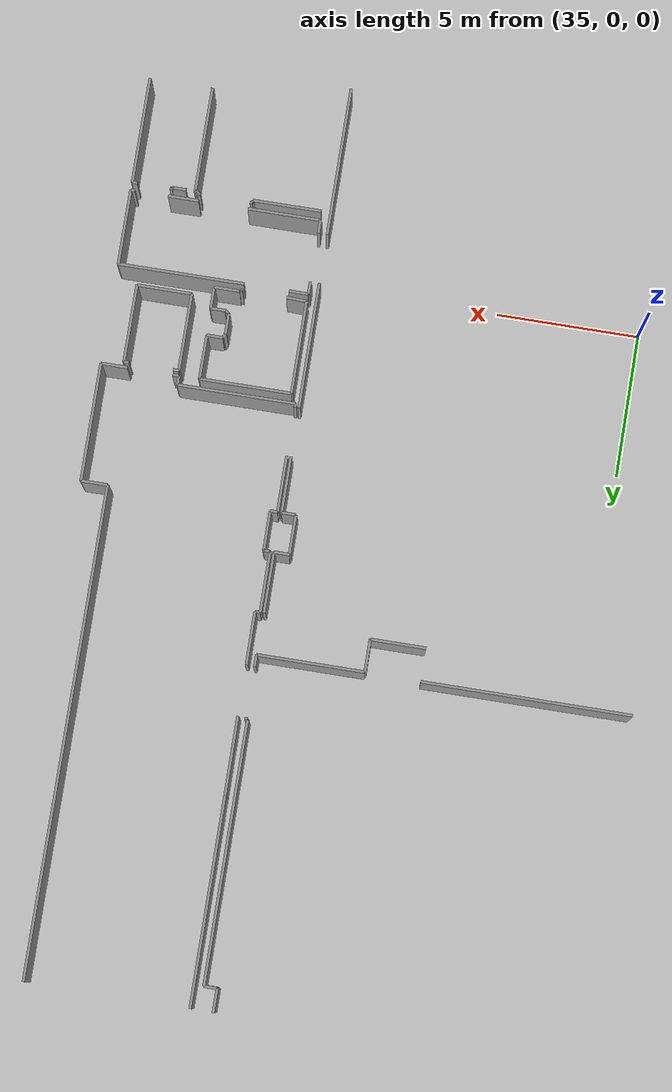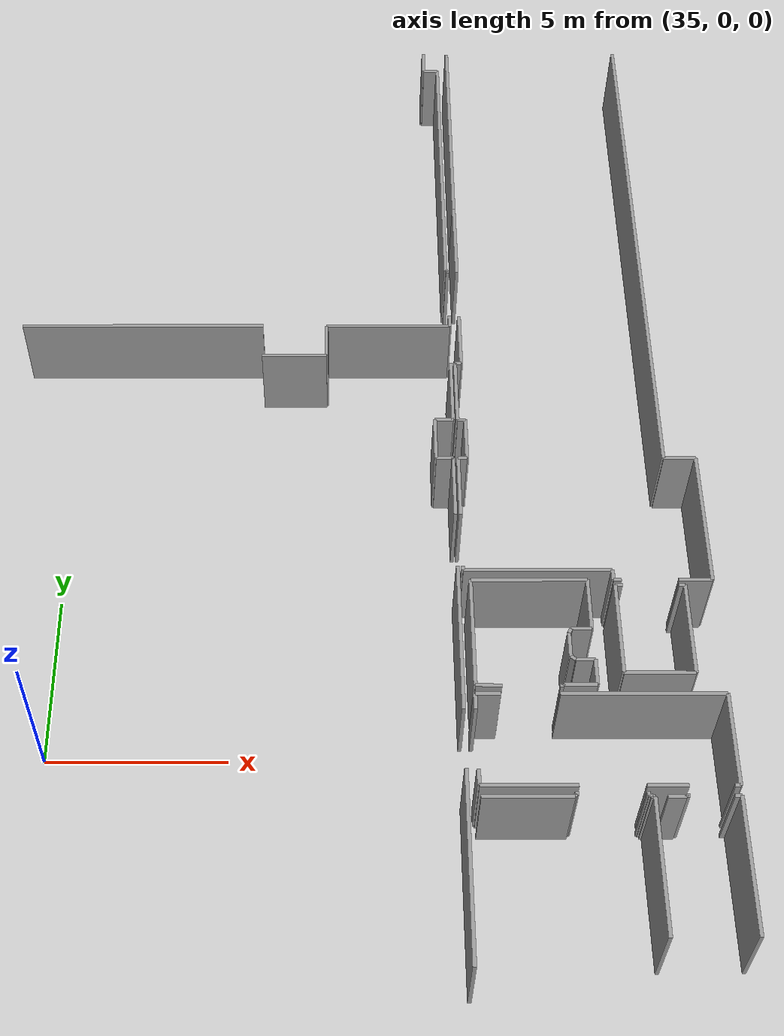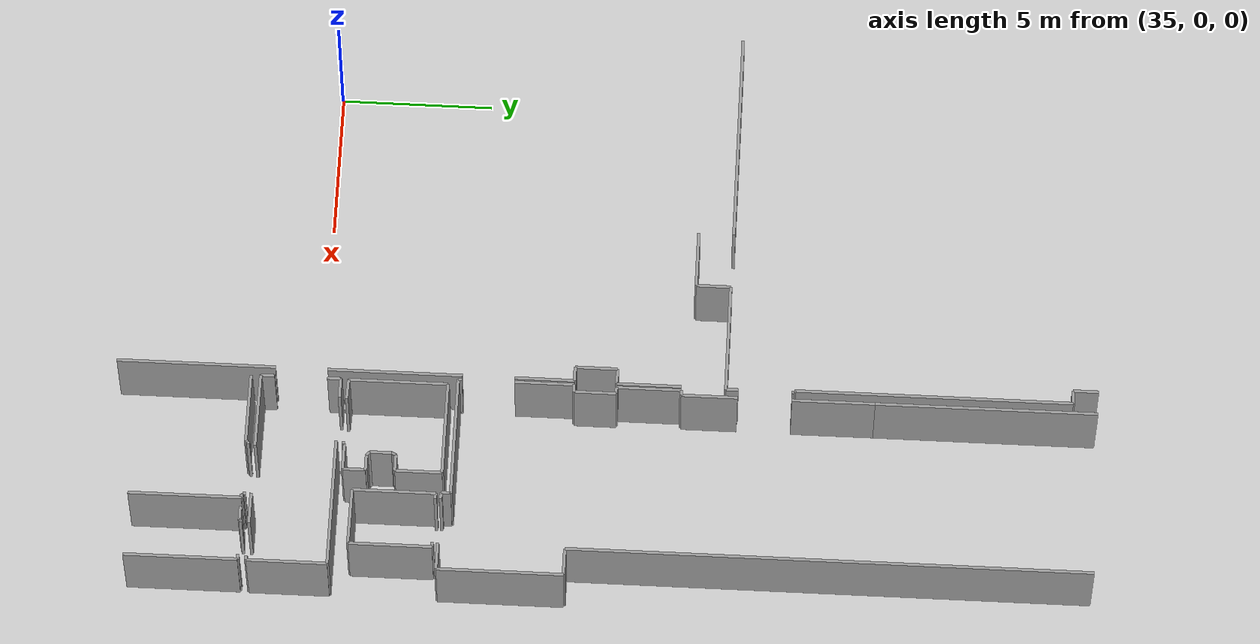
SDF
<sdf version="1.6">
 <world name="default">
  <model name="ground_plane">
   <static>1</static>
   <link name="link">
    <collision name="collision">
     <geometry><plane><normal>0 0 1</normal><size>100 100</size></plane></geometry>
     <surface><friction><ode><mu>100</mu><mu2>50</mu2></ode></friction></surface>
    </collision>
    <visual name="visual">
     <cast_shadows>0</cast_shadows>
     <geometry><plane><normal>0 0 1</normal><size>100 100</size></plane></geometry>
     <material>
      <script><uri>file://media/materials/scripts/gazebo.material</uri><name>Gazebo/Grey</name></script>
     </material>
    </visual>
   </link>
  </model>
  <model name="50045367">
   <static>1</static>
   <link name="Wall_161">
    <collision name="Wall_161_Collision">
     <geometry><box><size>0.830072666294 0.1 2.5</size></box></geometry>
     <pose>0.415036333147 0 1.25 0 0 0</pose>
    </collision>
    <visual name="Wall_161_Visual">
     <pose>0.415036333147 0 1.25 0 0 0</pose>
     <geometry><box><size>0.830072666294 0.1 2.5</size></box></geometry>
     <material>
      <script><uri>file://media/materials/scripts/gazebo.material</uri><name>Gazebo/Grey</name></script>
      <ambient>1 1 1 1</ambient>
     </material>
    </visual>
    <pose>99.0440317089 -0.00355709131562 0 0 0 -1.57079632679</pose>
   </link>
   <link name="Wall_162">
    <collision name="Wall_162_Collision">
     <geometry><box><size>0.457086234057 0.1 2.5</size></box></geometry>
     <pose>0.228543117028 0 1.25 0 0 0</pose>
    </collision>
    <visual name="Wall_162_Visual">
     <pose>0.228543117028 0 1.25 0 0 0</pose>
     <geometry><box><size>0.457086234057 0.1 2.5</size></box></geometry>
     <material>
      <script><uri>file://media/materials/scripts/gazebo.material</uri><name>Gazebo/Grey</name></script>
      <ambient>1 1 1 1</ambient>
     </material>
    </visual>
    <pose>99.0440317089 -0.83362975761 0 0 0 0.0</pose>
   </link>
   <link name="Wall_163">
    <collision name="Wall_163_Collision">
     <geometry><box><size>9.14464657757 0.1 2.5</size></box></geometry>
     <pose>4.57232328879 0 1.25 0 0 0</pose>
    </collision>
    <visual name="Wall_163_Visual">
     <pose>4.57232328879 0 1.25 0 0 0</pose>
     <geometry><box><size>9.14464657757 0.1 2.5</size></box></geometry>
     <material>
      <script><uri>file://media/materials/scripts/gazebo.material</uri><name>Gazebo/Grey</name></script>
      <ambient>1 1 1 1</ambient>
     </material>
    </visual>
    <pose>99.501117943 -0.83362975761 0 0 0 -1.57079632679</pose>
   </link>
   <link name="Wall_164">
    <collision name="Wall_164_Collision">
     <geometry><box><size>0.0581838508054 0.1 2.5</size></box></geometry>
     <pose>0.0290919254027 0 1.25 0 0 0</pose>
    </collision>
    <visual name="Wall_164_Visual">
     <pose>0.0290919254027 0 1.25 0 0 0</pose>
     <geometry><box><size>0.0581838508054 0.1 2.5</size></box></geometry>
     <material>
      <script><uri>file://media/materials/scripts/gazebo.material</uri><name>Gazebo/Grey</name></script>
      <ambient>1 1 1 1</ambient>
     </material>
    </visual>
    <pose>99.501117943 -9.97827633518 0 0 0 0.0</pose>
   </link>
   <link name="Wall_165">
    <collision name="Wall_165_Collision">
     <geometry><box><size>0.0788912038213 0.1 2.5</size></box></geometry>
     <pose>0.0394456019107 0 1.25 0 0 0</pose>
    </collision>
    <visual name="Wall_165_Visual">
     <pose>0.0394456019107 0 1.25 0 0 0</pose>
     <geometry><box><size>0.0788912038213 0.1 2.5</size></box></geometry>
     <material>
      <script><uri>file://media/materials/scripts/gazebo.material</uri><name>Gazebo/Grey</name></script>
      <ambient>1 1 1 1</ambient>
     </material>
    </visual>
    <pose>99.5593017938 -9.97827633518 0 0 0 -1.57079632679</pose>
   </link>
   <link name="Wall_166">
    <collision name="Wall_166_Collision">
     <geometry><box><size>0.414020021343 0.1 2.5</size></box></geometry>
     <pose>0.207010010671 0 1.25 0 0 0</pose>
    </collision>
    <visual name="Wall_166_Visual">
     <pose>0.207010010671 0 1.25 0 0 0</pose>
     <geometry><box><size>0.414020021343 0.1 2.5</size></box></geometry>
     <material>
      <script><uri>file://media/materials/scripts/gazebo.material</uri><name>Gazebo/Grey</name></script>
      <ambient>1 1 1 1</ambient>
     </material>
    </visual>
    <pose>99.5593017938 -11.813989532 0 0 0 -1.57079632679</pose>
   </link>
   <link name="Wall_167">
    <collision name="Wall_167_Collision">
     <geometry><box><size>3.75476396158 0.1 2.5</size></box></geometry>
     <pose>1.87738198079 0 1.25 0 0 0</pose>
    </collision>
    <visual name="Wall_167_Visual">
     <pose>1.87738198079 0 1.25 0 0 0</pose>
     <geometry><box><size>3.75476396158 0.1 2.5</size></box></geometry>
     <material>
      <script><uri>file://media/materials/scripts/gazebo.material</uri><name>Gazebo/Grey</name></script>
      <ambient>1 1 1 1</ambient>
     </material>
    </visual>
    <pose>99.5593017938 -12.2280095533 0 0 0 3.14159265359</pose>
   </link>
   <link name="Wall_168">
    <collision name="Wall_168_Collision">
     <geometry><box><size>1.14042888358 0.1 2.5</size></box></geometry>
     <pose>0.570214441791 0 1.25 0 0 0</pose>
    </collision>
    <visual name="Wall_168_Visual">
     <pose>0.570214441791 0 1.25 0 0 0</pose>
     <geometry><box><size>1.14042888358 0.1 2.5</size></box></geometry>
     <material>
      <script><uri>file://media/materials/scripts/gazebo.material</uri><name>Gazebo/Grey</name></script>
      <ambient>1 1 1 1</ambient>
     </material>
    </visual>
    <pose>95.8045378322 -12.2280095533 0 0 0 -1.57079632679</pose>
   </link>
   <link name="Wall_169">
    <collision name="Wall_169_Collision">
     <geometry><box><size>1.93937700086 0.1 2.5</size></box></geometry>
     <pose>0.969688500432 0 1.25 0 0 0</pose>
    </collision>
    <visual name="Wall_169_Visual">
     <pose>0.969688500432 0 1.25 0 0 0</pose>
     <geometry><box><size>1.93937700086 0.1 2.5</size></box></geometry>
     <material>
      <script><uri>file://media/materials/scripts/gazebo.material</uri><name>Gazebo/Grey</name></script>
      <ambient>1 1 1 1</ambient>
     </material>
    </visual>
    <pose>95.8045378322 -13.3684384369 0 0 0 3.14159265359</pose>
   </link>
   <link name="Wall_171">
    <collision name="Wall_171_Collision">
     <geometry><box><size>7.32163727832 0.1 2.5</size></box></geometry>
     <pose>3.66081863916 0 1.25 0 0 0</pose>
    </collision>
    <visual name="Wall_171_Visual">
     <pose>3.66081863916 0 1.25 0 0 0</pose>
     <geometry><box><size>7.32163727832 0.1 2.5</size></box></geometry>
     <material>
      <script><uri>file://media/materials/scripts/gazebo.material</uri><name>Gazebo/Grey</name></script>
      <ambient>1 1 1 1</ambient>
     </material>
    </visual>
    <pose>93.8651608313 -12.2062858885 0 0 0 3.14159265359</pose>
   </link>
   <link name="Wall_181">
    <collision name="Wall_181_Collision">
     <geometry><box><size>7.30842522486 0.1 2.5</size></box></geometry>
     <pose>3.65421261243 0 1.25 0 0 0</pose>
    </collision>
    <visual name="Wall_181_Visual">
     <pose>3.65421261243 0 1.25 0 0 0</pose>
     <geometry><box><size>7.30842522486 0.1 2.5</size></box></geometry>
     <material>
      <script><uri>file://media/materials/scripts/gazebo.material</uri><name>Gazebo/Grey</name></script>
      <ambient>1 1 1 1</ambient>
     </material>
    </visual>
    <pose>99.8414553585 -7.31935057676 0 0 0 1.57079632679</pose>
   </link>
   <link name="Wall_182">
    <collision name="Wall_182_Collision">
     <geometry><box><size>17.183164795 0.1 2.5</size></box></geometry>
     <pose>8.59158239748 0 1.25 0 0 0</pose>
    </collision>
    <visual name="Wall_182_Visual">
     <pose>8.59158239748 0 1.25 0 0 0</pose>
     <geometry><box><size>17.183164795 0.1 2.5</size></box></geometry>
     <material>
      <script><uri>file://media/materials/scripts/gazebo.material</uri><name>Gazebo/Grey</name></script>
      <ambient>1 1 1 1</ambient>
     </material>
    </visual>
    <pose>105.55922557 -0.010925351898 0 0 0 -1.57079632679</pose>
   </link>
   <link name="Wall_183">
    <collision name="Wall_183_Collision">
     <geometry><box><size>0.927384521571 0.1 2.5</size></box></geometry>
     <pose>0.463692260786 0 1.25 0 0 0</pose>
    </collision>
    <visual name="Wall_183_Visual">
     <pose>0.463692260786 0 1.25 0 0 0</pose>
     <geometry><box><size>0.927384521571 0.1 2.5</size></box></geometry>
     <material>
      <script><uri>file://media/materials/scripts/gazebo.material</uri><name>Gazebo/Grey</name></script>
      <ambient>1 1 1 1</ambient>
     </material>
    </visual>
    <pose>105.55922557 -17.1940901469 0 0 0 0.0</pose>
   </link>
   <link name="Wall_184">
    <collision name="Wall_184_Collision">
     <geometry><box><size>4.13842166777 0.1 2.5</size></box></geometry>
     <pose>2.06921083388 0 1.25 0 0 0</pose>
    </collision>
    <visual name="Wall_184_Visual">
     <pose>2.06921083388 0 1.25 0 0 0</pose>
     <geometry><box><size>4.13842166777 0.1 2.5</size></box></geometry>
     <material>
      <script><uri>file://media/materials/scripts/gazebo.material</uri><name>Gazebo/Grey</name></script>
      <ambient>1 1 1 1</ambient>
     </material>
    </visual>
    <pose>106.486610092 -17.1940901469 0 0 0 -1.57079632679</pose>
   </link>
   <link name="Wall_185">
    <collision name="Wall_185_Collision">
     <geometry><box><size>0.927384521571 0.1 2.5</size></box></geometry>
     <pose>0.463692260786 0 1.25 0 0 0</pose>
    </collision>
    <visual name="Wall_185_Visual">
     <pose>0.463692260786 0 1.25 0 0 0</pose>
     <geometry><box><size>0.927384521571 0.1 2.5</size></box></geometry>
     <material>
      <script><uri>file://media/materials/scripts/gazebo.material</uri><name>Gazebo/Grey</name></script>
      <ambient>1 1 1 1</ambient>
     </material>
    </visual>
    <pose>106.486610092 -21.3325118146 0 0 0 3.14159265359</pose>
   </link>
   <link name="Wall_186">
    <collision name="Wall_186_Collision">
     <geometry><box><size>0.219777427715 0.1 2.5</size></box></geometry>
     <pose>0.109888713857 0 1.25 0 0 0</pose>
    </collision>
    <visual name="Wall_186_Visual">
     <pose>0.109888713857 0 1.25 0 0 0</pose>
     <geometry><box><size>0.219777427715 0.1 2.5</size></box></geometry>
     <material>
      <script><uri>file://media/materials/scripts/gazebo.material</uri><name>Gazebo/Grey</name></script>
      <ambient>1 1 1 1</ambient>
     </material>
    </visual>
    <pose>103.980131104 -21.3325118146 0 0 0 3.14159265359</pose>
   </link>
   <link name="Wall_187">
    <collision name="Wall_187_Collision">
     <geometry><box><size>0.317851516845 0.1 2.5</size></box></geometry>
     <pose>0.158925758423 0 1.25 0 0 0</pose>
    </collision>
    <visual name="Wall_187_Visual">
     <pose>0.158925758423 0 1.25 0 0 0</pose>
     <geometry><box><size>0.317851516845 0.1 2.5</size></box></geometry>
     <material>
      <script><uri>file://media/materials/scripts/gazebo.material</uri><name>Gazebo/Grey</name></script>
      <ambient>1 1 1 1</ambient>
     </material>
    </visual>
    <pose>103.760353677 -21.3325118146 0 0 0 1.57079632679</pose>
   </link>
   <link name="Wall_188">
    <collision name="Wall_188_Collision">
     <geometry><box><size>4.12165252299 0.1 2.5</size></box></geometry>
     <pose>2.0608262615 0 1.25 0 0 0</pose>
    </collision>
    <visual name="Wall_188_Visual">
     <pose>2.0608262615 0 1.25 0 0 0</pose>
     <geometry><box><size>4.12165252299 0.1 2.5</size></box></geometry>
     <material>
      <script><uri>file://media/materials/scripts/gazebo.material</uri><name>Gazebo/Grey</name></script>
      <ambient>1 1 1 1</ambient>
     </material>
    </visual>
    <pose>103.760353677 -21.0146602978 0 0 0 3.14159265359</pose>
   </link>
   <link name="Wall_189">
    <collision name="Wall_189_Collision">
     <geometry><box><size>0.125133390924 0.1 2.5</size></box></geometry>
     <pose>0.0625666954622 0 1.25 0 0 0</pose>
    </collision>
    <visual name="Wall_189_Visual">
     <pose>0.0625666954622 0 1.25 0 0 0</pose>
     <geometry><box><size>0.125133390924 0.1 2.5</size></box></geometry>
     <material>
      <script><uri>file://media/materials/scripts/gazebo.material</uri><name>Gazebo/Grey</name></script>
      <ambient>1 1 1 1</ambient>
     </material>
    </visual>
    <pose>99.6387011535 -21.0146602978 0 0 0 1.57079632679</pose>
   </link>
   <link name="Wall_190">
    <collision name="Wall_190_Collision">
     <geometry><box><size>1.964657757 0.1 2.5</size></box></geometry>
     <pose>0.9823288785 0 1.25 0 0 0</pose>
    </collision>
    <visual name="Wall_190_Visual">
     <pose>0.9823288785 0 1.25 0 0 0</pose>
     <geometry><box><size>1.964657757 0.1 2.5</size></box></geometry>
     <material>
      <script><uri>file://media/materials/scripts/gazebo.material</uri><name>Gazebo/Grey</name></script>
      <ambient>1 1 1 1</ambient>
     </material>
    </visual>
    <pose>99.6387011535 -19.163448346 0 0 0 1.57079632679</pose>
   </link>
   <link name="Wall_191">
    <collision name="Wall_191_Collision">
     <geometry><box><size>0.253696834189 0.1 2.5</size></box></geometry>
     <pose>0.126848417094 0 1.25 0 0 0</pose>
    </collision>
    <visual name="Wall_191_Visual">
     <pose>0.126848417094 0 1.25 0 0 0</pose>
     <geometry><box><size>0.253696834189 0.1 2.5</size></box></geometry>
     <material>
      <script><uri>file://media/materials/scripts/gazebo.material</uri><name>Gazebo/Grey</name></script>
      <ambient>1 1 1 1</ambient>
     </material>
    </visual>
    <pose>99.6387011535 -17.198790589 0 0 0 0.0</pose>
   </link>
   <link name="Wall_192">
    <collision name="Wall_192_Collision">
     <geometry><box><size>1.38650337924 0.1 2.5</size></box></geometry>
     <pose>0.693251689618 0 1.25 0 0 0</pose>
    </collision>
    <visual name="Wall_192_Visual">
     <pose>0.693251689618 0 1.25 0 0 0</pose>
     <geometry><box><size>1.38650337924 0.1 2.5</size></box></geometry>
     <material>
      <script><uri>file://media/materials/scripts/gazebo.material</uri><name>Gazebo/Grey</name></script>
      <ambient>1 1 1 1</ambient>
     </material>
    </visual>
    <pose>99.8923979877 -17.198790589 0 0 0 1.57079632679</pose>
   </link>
   <link name="Wall_193">
    <collision name="Wall_193_Collision">
     <geometry><box><size>0.225494181615 0.1 2.5</size></box></geometry>
     <pose>0.112747090807 0 1.25 0 0 0</pose>
    </collision>
    <visual name="Wall_193_Visual">
     <pose>0.112747090807 0 1.25 0 0 0</pose>
     <geometry><box><size>0.225494181615 0.1 2.5</size></box></geometry>
     <material>
      <script><uri>file://media/materials/scripts/gazebo.material</uri><name>Gazebo/Grey</name></script>
      <ambient>1 1 1 1</ambient>
     </material>
    </visual>
    <pose>99.8923979877 -15.8122872097 0 0 0 3.14159265359</pose>
   </link>
   <link name="Wall_194">
    <collision name="Wall_194_Collision">
     <geometry><box><size>2.12815691854 0.1 2.5</size></box></geometry>
     <pose>1.06407845927 0 1.25 0 0 0</pose>
    </collision>
    <visual name="Wall_194_Visual">
     <pose>1.06407845927 0 1.25 0 0 0</pose>
     <geometry><box><size>2.12815691854 0.1 2.5</size></box></geometry>
     <material>
      <script><uri>file://media/materials/scripts/gazebo.material</uri><name>Gazebo/Grey</name></script>
      <ambient>1 1 1 1</ambient>
     </material>
    </visual>
    <pose>99.6669038061 -15.8122872097 0 0 0 1.57079632679</pose>
   </link>
   <link name="Wall_195">
    <collision name="Wall_195_Collision">
     <geometry><box><size>0.181157579145 0.1 2.5</size></box></geometry>
     <pose>0.0905787895726 0 1.25 0 0 0</pose>
    </collision>
    <visual name="Wall_195_Visual">
     <pose>0.0905787895726 0 1.25 0 0 0</pose>
     <geometry><box><size>0.181157579145 0.1 2.5</size></box></geometry>
     <material>
      <script><uri>file://media/materials/scripts/gazebo.material</uri><name>Gazebo/Grey</name></script>
      <ambient>1 1 1 1</ambient>
     </material>
    </visual>
    <pose>99.6669038061 -13.6841302912 0 0 0 0.0</pose>
   </link>
   <link name="Wall_196">
    <collision name="Wall_196_Collision">
     <geometry><box><size>1.8513389908 0.1 2.5</size></box></geometry>
     <pose>0.925669495401 0 1.25 0 0 0</pose>
    </collision>
    <visual name="Wall_196_Visual">
     <pose>0.925669495401 0 1.25 0 0 0</pose>
     <geometry><box><size>1.8513389908 0.1 2.5</size></box></geometry>
     <material>
      <script><uri>file://media/materials/scripts/gazebo.material</uri><name>Gazebo/Grey</name></script>
      <ambient>1 1 1 1</ambient>
     </material>
    </visual>
    <pose>99.8480613852 -13.6841302912 0 0 0 1.57079632679</pose>
   </link>
   <link name="Wall_197">
    <collision name="Wall_197_Collision">
     <geometry><box><size>2.7293133455 0.1 2.5</size></box></geometry>
     <pose>1.36465667275 0 1.25 0 0 0</pose>
    </collision>
    <visual name="Wall_197_Visual">
     <pose>1.36465667275 0 1.25 0 0 0</pose>
     <geometry><box><size>2.7293133455 0.1 2.5</size></box></geometry>
     <material>
      <script><uri>file://media/materials/scripts/gazebo.material</uri><name>Gazebo/Grey</name></script>
      <ambient>1 1 1 1</ambient>
     </material>
    </visual>
    <pose>99.8480613852 -10.0486559276 0 0 0 1.57321672795</pose>
   </link>
   <link name="Wall_198">
    <collision name="Wall_198_Collision">
     <geometry><box><size>2.72498602571 0.1 2.5</size></box></geometry>
     <pose>1.36249301286 0 1.25 0 0 0</pose>
    </collision>
    <visual name="Wall_198_Visual">
     <pose>1.36249301286 0 1.25 0 0 0</pose>
     <geometry><box><size>2.72498602571 0.1 2.5</size></box></geometry>
     <material>
      <script><uri>file://media/materials/scripts/gazebo.material</uri><name>Gazebo/Grey</name></script>
      <ambient>1 1 1 1</ambient>
     </material>
    </visual>
    <pose>103.79338381 -24.2320493928 0 0 0 1.57079632679</pose>
   </link>
   <link name="Wall_199">
    <collision name="Wall_199_Collision">
     <geometry><box><size>0.195640022359 0.1 2.5</size></box></geometry>
     <pose>0.0978200111794 0 1.25 0 0 0</pose>
    </collision>
    <visual name="Wall_199_Visual">
     <pose>0.0978200111794 0 1.25 0 0 0</pose>
     <geometry><box><size>0.195640022359 0.1 2.5</size></box></geometry>
     <material>
      <script><uri>file://media/materials/scripts/gazebo.material</uri><name>Gazebo/Grey</name></script>
      <ambient>1 1 1 1</ambient>
     </material>
    </visual>
    <pose>103.79338381 -21.507063367 0 0 0 0.0</pose>
   </link>
   <link name="Wall_200">
    <collision name="Wall_200_Collision">
     <geometry><box><size>0.17531378627 0.1 2.5</size></box></geometry>
     <pose>0.0876568931348 0 1.25 0 0 0</pose>
    </collision>
    <visual name="Wall_200_Visual">
     <pose>0.0876568931348 0 1.25 0 0 0</pose>
     <geometry><box><size>0.17531378627 0.1 2.5</size></box></geometry>
     <material>
      <script><uri>file://media/materials/scripts/gazebo.material</uri><name>Gazebo/Grey</name></script>
      <ambient>1 1 1 1</ambient>
     </material>
    </visual>
    <pose>105.537628945 -21.507063367 0 0 0 0.0</pose>
   </link>
   <link name="Wall_201">
    <collision name="Wall_201_Collision">
     <geometry><box><size>2.73476802683 0.1 2.5</size></box></geometry>
     <pose>1.36738401342 0 1.25 0 0 0</pose>
    </collision>
    <visual name="Wall_201_Visual">
     <pose>1.36738401342 0 1.25 0 0 0</pose>
     <geometry><box><size>2.73476802683 0.1 2.5</size></box></geometry>
     <material>
      <script><uri>file://media/materials/scripts/gazebo.material</uri><name>Gazebo/Grey</name></script>
      <ambient>1 1 1 1</ambient>
     </material>
    </visual>
    <pose>105.712942731 -21.507063367 0 0 0 -1.57079632679</pose>
   </link>
   <link name="Wall_202">
    <collision name="Wall_202_Collision">
     <geometry><box><size>1.91958384487 0.1 2.5</size></box></geometry>
     <pose>0.959791922436 0 1.25 0 0 0</pose>
    </collision>
    <visual name="Wall_202_Visual">
     <pose>0.959791922436 0 1.25 0 0 0</pose>
     <geometry><box><size>1.91958384487 0.1 2.5</size></box></geometry>
     <material>
      <script><uri>file://media/materials/scripts/gazebo.material</uri><name>Gazebo/Grey</name></script>
      <ambient>1 1 1 1</ambient>
     </material>
    </visual>
    <pose>105.712942731 -24.2418313939 0 0 0 3.13649673476</pose>
   </link>
   <link name="Wall_203">
    <collision name="Wall_203_Collision">
     <geometry><box><size>0.459372935617 0.1 2.5</size></box></geometry>
     <pose>0.229686467808 0 1.25 0 0 0</pose>
    </collision>
    <visual name="Wall_203_Visual">
     <pose>0.229686467808 0 1.25 0 0 0</pose>
     <geometry><box><size>0.459372935617 0.1 2.5</size></box></geometry>
     <material>
      <script><uri>file://media/materials/scripts/gazebo.material</uri><name>Gazebo/Grey</name></script>
      <ambient>1 1 1 1</ambient>
     </material>
    </visual>
    <pose>99.8089333808 -27.4980944154 0 0 0 1.57079632679</pose>
   </link>
   <link name="Wall_204">
    <collision name="Wall_204_Collision">
     <geometry><box><size>0.442730829819 0.1 2.5</size></box></geometry>
     <pose>0.221365414909 0 1.25 0 0 0</pose>
    </collision>
    <visual name="Wall_204_Visual">
     <pose>0.221365414909 0 1.25 0 0 0</pose>
     <geometry><box><size>0.442730829819 0.1 2.5</size></box></geometry>
     <material>
      <script><uri>file://media/materials/scripts/gazebo.material</uri><name>Gazebo/Grey</name></script>
      <ambient>1 1 1 1</ambient>
     </material>
    </visual>
    <pose>99.8089333808 -25.3095939834 0 0 0 1.57079632679</pose>
   </link>
   <link name="Wall_205">
    <collision name="Wall_205_Collision">
     <geometry><box><size>0.676482544845 0.1 2.5</size></box></geometry>
     <pose>0.338241272422 0 1.25 0 0 0</pose>
    </collision>
    <visual name="Wall_205_Visual">
     <pose>0.338241272422 0 1.25 0 0 0</pose>
     <geometry><box><size>0.676482544845 0.1 2.5</size></box></geometry>
     <material>
      <script><uri>file://media/materials/scripts/gazebo.material</uri><name>Gazebo/Grey</name></script>
      <ambient>1 1 1 1</ambient>
     </material>
    </visual>
    <pose>99.8089333808 -24.8668631536 0 0 0 0.0</pose>
   </link>
   <link name="Wall_206">
    <collision name="Wall_206_Collision">
     <geometry><box><size>4.41676406321 0.1 2.5</size></box></geometry>
     <pose>2.20838203161 0 1.25 0 0 0</pose>
    </collision>
    <visual name="Wall_206_Visual">
     <pose>2.20838203161 0 1.25 0 0 0</pose>
     <geometry><box><size>4.41676406321 0.1 2.5</size></box></geometry>
     <material>
      <script><uri>file://media/materials/scripts/gazebo.material</uri><name>Gazebo/Grey</name></script>
      <ambient>1 1 1 1</ambient>
     </material>
    </visual>
    <pose>102.058412521 -24.8668631536 0 0 0 0.0</pose>
   </link>
   <link name="Wall_207">
    <collision name="Wall_207_Collision">
     <geometry><box><size>2.63961583414 0.1 2.5</size></box></geometry>
     <pose>1.31980791707 0 1.25 0 0 0</pose>
    </collision>
    <visual name="Wall_207_Visual">
     <pose>1.31980791707 0 1.25 0 0 0</pose>
     <geometry><box><size>2.63961583414 0.1 2.5</size></box></geometry>
     <material>
      <script><uri>file://media/materials/scripts/gazebo.material</uri><name>Gazebo/Grey</name></script>
      <ambient>1 1 1 1</ambient>
     </material>
    </visual>
    <pose>106.475176584 -24.8668631536 0 0 0 -1.57079632679</pose>
   </link>
   <link name="Wall_208">
    <collision name="Wall_208_Collision">
     <geometry><box><size>0.142283652625 0.1 2.5</size></box></geometry>
     <pose>0.0711418263123 0 1.25 0 0 0</pose>
    </collision>
    <visual name="Wall_208_Visual">
     <pose>0.0711418263123 0 1.25 0 0 0</pose>
     <geometry><box><size>0.142283652625 0.1 2.5</size></box></geometry>
     <material>
      <script><uri>file://media/materials/scripts/gazebo.material</uri><name>Gazebo/Grey</name></script>
      <ambient>1 1 1 1</ambient>
     </material>
    </visual>
    <pose>106.475176584 -27.5064789878 0 0 0 3.14159265359</pose>
   </link>
   <link name="Wall_209">
    <collision name="Wall_209_Collision">
     <geometry><box><size>1.07093856395 0.1 2.5</size></box></geometry>
     <pose>0.535469281976 0 1.25 0 0 0</pose>
    </collision>
    <visual name="Wall_209_Visual">
     <pose>0.535469281976 0 1.25 0 0 0</pose>
     <geometry><box><size>1.07093856395 0.1 2.5</size></box></geometry>
     <material>
      <script><uri>file://media/materials/scripts/gazebo.material</uri><name>Gazebo/Grey</name></script>
      <ambient>1 1 1 1</ambient>
     </material>
    </visual>
    <pose>105.157782408 -27.5064789878 0 0 0 3.14159265359</pose>
   </link>
   <link name="Wall_210">
    <collision name="Wall_210_Collision">
     <geometry><box><size>2.54612895364 0.1 2.5</size></box></geometry>
     <pose>1.27306447682 0 1.25 0 0 0</pose>
    </collision>
    <visual name="Wall_210_Visual">
     <pose>1.27306447682 0 1.25 0 0 0</pose>
     <geometry><box><size>2.54612895364 0.1 2.5</size></box></geometry>
     <material>
      <script><uri>file://media/materials/scripts/gazebo.material</uri><name>Gazebo/Grey</name></script>
      <ambient>1 1 1 1</ambient>
     </material>
    </visual>
    <pose>102.355048529 -27.5064789878 0 0 0 3.13829958097</pose>
   </link>
   <link name="Wall_211">
    <collision name="Wall_211_Collision">
     <geometry><box><size>3.26312312618 0.1 2.5</size></box></geometry>
     <pose>1.63156156309 0 1.25 0 0 0</pose>
    </collision>
    <visual name="Wall_211_Visual">
     <pose>1.63156156309 0 1.25 0 0 0</pose>
     <geometry><box><size>3.26312312618 0.1 2.5</size></box></geometry>
     <material>
      <script><uri>file://media/materials/scripts/gazebo.material</uri><name>Gazebo/Grey</name></script>
      <ambient>1 1 1 1</ambient>
     </material>
    </visual>
    <pose>99.828497383 -24.605035825 0 0 0 1.57079632679</pose>
   </link>
   <link name="Wall_212">
    <collision name="Wall_212_Collision">
     <geometry><box><size>3.21294273083 0.1 2.5</size></box></geometry>
     <pose>1.60647136541 0 1.25 0 0 0</pose>
    </collision>
    <visual name="Wall_212_Visual">
     <pose>1.60647136541 0 1.25 0 0 0</pose>
     <geometry><box><size>3.21294273083 0.1 2.5</size></box></geometry>
     <material>
      <script><uri>file://media/materials/scripts/gazebo.material</uri><name>Gazebo/Grey</name></script>
      <ambient>1 1 1 1</ambient>
     </material>
    </visual>
    <pose>99.828497383 -21.3419126988 0 0 0 0.0</pose>
   </link>
   <link name="Wall_213">
    <collision name="Wall_213_Collision">
     <geometry><box><size>1.54530209868 0.1 2.5</size></box></geometry>
     <pose>0.772651049342 0 1.25 0 0 0</pose>
    </collision>
    <visual name="Wall_213_Visual">
     <pose>0.772651049342 0 1.25 0 0 0</pose>
     <geometry><box><size>1.54530209868 0.1 2.5</size></box></geometry>
     <material>
      <script><uri>file://media/materials/scripts/gazebo.material</uri><name>Gazebo/Grey</name></script>
      <ambient>1 1 1 1</ambient>
     </material>
    </visual>
    <pose>103.041440114 -21.3419126988 0 0 0 -1.57079632679</pose>
   </link>
   <link name="Wall_214">
    <collision name="Wall_214_Collision">
     <geometry><box><size>0.559606687332 0.1 2.5</size></box></geometry>
     <pose>0.279803343666 0 1.25 0 0 0</pose>
    </collision>
    <visual name="Wall_214_Visual">
     <pose>0.279803343666 0 1.25 0 0 0</pose>
     <geometry><box><size>0.559606687332 0.1 2.5</size></box></geometry>
     <material>
      <script><uri>file://media/materials/scripts/gazebo.material</uri><name>Gazebo/Grey</name></script>
      <ambient>1 1 1 1</ambient>
     </material>
    </visual>
    <pose>103.041440114 -22.8872147975 0 0 0 3.14159265359</pose>
   </link>
   <link name="Wall_215">
    <collision name="Wall_215_Collision">
     <geometry><box><size>0.149419654983 0.1 2.5</size></box></geometry>
     <pose>0.0747098274915 0 1.25 0 0 0</pose>
    </collision>
    <visual name="Wall_215_Visual">
     <pose>0.0747098274915 0 1.25 0 0 0</pose>
     <geometry><box><size>0.149419654983 0.1 2.5</size></box></geometry>
     <material>
      <script><uri>file://media/materials/scripts/gazebo.material</uri><name>Gazebo/Grey</name></script>
      <ambient>1 1 1 1</ambient>
     </material>
    </visual>
    <pose>102.481833426 -22.8872147975 0 0 0 -2.0344439358</pose>
   </link>
   <link name="Wall_216">
    <collision name="Wall_216_Collision">
     <geometry><box><size>0.72437623863 0.1 2.5</size></box></geometry>
     <pose>0.362188119315 0 1.25 0 0 0</pose>
    </collision>
    <visual name="Wall_216_Visual">
     <pose>0.362188119315 0 1.25 0 0 0</pose>
     <geometry><box><size>0.72437623863 0.1 2.5</size></box></geometry>
     <material>
      <script><uri>file://media/materials/scripts/gazebo.material</uri><name>Gazebo/Grey</name></script>
      <ambient>1 1 1 1</ambient>
     </material>
    </visual>
    <pose>102.415010925 -23.0208597998 0 0 0 -1.57079632679</pose>
   </link>
   <link name="Wall_217">
    <collision name="Wall_217_Collision">
     <geometry><box><size>0.161500917757 0.1 2.5</size></box></geometry>
     <pose>0.0807504588786 0 1.25 0 0 0</pose>
    </collision>
    <visual name="Wall_217_Visual">
     <pose>0.0807504588786 0 1.25 0 0 0</pose>
     <geometry><box><size>0.161500917757 0.1 2.5</size></box></geometry>
     <material>
      <script><uri>file://media/materials/scripts/gazebo.material</uri><name>Gazebo/Grey</name></script>
      <ambient>1 1 1 1</ambient>
     </material>
    </visual>
    <pose>102.415010925 -23.7452360384 0 0 0 -0.632960278311</pose>
   </link>
   <link name="Wall_218">
    <collision name="Wall_218_Collision">
     <geometry><box><size>0.519081254129 0.1 2.5</size></box></geometry>
     <pose>0.259540627064 0 1.25 0 0 0</pose>
    </collision>
    <visual name="Wall_218_Visual">
     <pose>0.259540627064 0 1.25 0 0 0</pose>
     <geometry><box><size>0.519081254129 0.1 2.5</size></box></geometry>
     <material>
      <script><uri>file://media/materials/scripts/gazebo.material</uri><name>Gazebo/Grey</name></script>
      <ambient>1 1 1 1</ambient>
     </material>
    </visual>
    <pose>102.545225875 -23.840769348 0 0 0 0.0</pose>
   </link>
   <link name="Wall_219">
    <collision name="Wall_219_Collision">
     <geometry><box><size>0.750546267595 0.1 2.5</size></box></geometry>
     <pose>0.375273133797 0 1.25 0 0 0</pose>
    </collision>
    <visual name="Wall_219_Visual">
     <pose>0.375273133797 0 1.25 0 0 0</pose>
     <geometry><box><size>0.750546267595 0.1 2.5</size></box></geometry>
     <material>
      <script><uri>file://media/materials/scripts/gazebo.material</uri><name>Gazebo/Grey</name></script>
      <ambient>1 1 1 1</ambient>
     </material>
    </visual>
    <pose>103.064307129 -23.840769348 0 0 0 -1.57079632679</pose>
   </link>
   <link name="Wall_220">
    <collision name="Wall_220_Collision">
     <geometry><box><size>0.899181868997 0.1 2.5</size></box></geometry>
     <pose>0.449590934499 0 1.25 0 0 0</pose>
    </collision>
    <visual name="Wall_220_Visual">
     <pose>0.449590934499 0 1.25 0 0 0</pose>
     <geometry><box><size>0.899181868997 0.1 2.5</size></box></geometry>
     <material>
      <script><uri>file://media/materials/scripts/gazebo.material</uri><name>Gazebo/Grey</name></script>
      <ambient>1 1 1 1</ambient>
     </material>
    </visual>
    <pose>103.064307129 -24.5913156156 0 0 0 3.14159265359</pose>
   </link>
   <link name="Wall_221">
    <collision name="Wall_221_Collision">
     <geometry><box><size>0.038492809594 0.1 2.5</size></box></geometry>
     <pose>0.019246404797 0 1.25 0 0 0</pose>
    </collision>
    <visual name="Wall_221_Visual">
     <pose>0.019246404797 0 1.25 0 0 0</pose>
     <geometry><box><size>0.038492809594 0.1 2.5</size></box></geometry>
     <material>
      <script><uri>file://media/materials/scripts/gazebo.material</uri><name>Gazebo/Grey</name></script>
      <ambient>1 1 1 1</ambient>
     </material>
    </visual>
    <pose>102.16512526 -24.5913156156 0 0 0 -1.57079632679</pose>
   </link>
   <link name="Wall_222">
    <collision name="Wall_222_Collision">
     <geometry><box><size>0.0933736470349 0.1 2.5</size></box></geometry>
     <pose>0.0466868235175 0 1.25 0 0 0</pose>
    </collision>
    <visual name="Wall_222_Visual">
     <pose>0.0466868235175 0 1.25 0 0 0</pose>
     <geometry><box><size>0.0933736470349 0.1 2.5</size></box></geometry>
     <material>
      <script><uri>file://media/materials/scripts/gazebo.material</uri><name>Gazebo/Grey</name></script>
      <ambient>1 1 1 1</ambient>
     </material>
    </visual>
    <pose>102.16512526 -24.6298084252 0 0 0 3.14159265359</pose>
   </link>
   <link name="Wall_223">
    <collision name="Wall_223_Collision">
     <geometry><box><size>0.703089127496 0.1 2.5</size></box></geometry>
     <pose>0.351544563748 0 1.25 0 0 0</pose>
    </collision>
    <visual name="Wall_223_Visual">
     <pose>0.351544563748 0 1.25 0 0 0</pose>
     <geometry><box><size>0.703089127496 0.1 2.5</size></box></geometry>
     <material>
      <script><uri>file://media/materials/scripts/gazebo.material</uri><name>Gazebo/Grey</name></script>
      <ambient>1 1 1 1</ambient>
     </material>
    </visual>
    <pose>100.531149957 -24.6298084252 0 0 0 3.10635141929</pose>
   </link>
   <link name="Wall_225">
    <collision name="Wall_225_Collision">
     <geometry><box><size>2.39620915697 0.1 2.5</size></box></geometry>
     <pose>1.19810457848 0 1.25 0 0 0</pose>
    </collision>
    <visual name="Wall_225_Visual">
     <pose>1.19810457848 0 1.25 0 0 0</pose>
     <geometry><box><size>2.39620915697 0.1 2.5</size></box></geometry>
     <material>
      <script><uri>file://media/materials/scripts/gazebo.material</uri><name>Gazebo/Grey</name></script>
      <ambient>1 1 1 1</ambient>
     </material>
    </visual>
    <pose>99.8339600589 -27.8177244779 0 0 0 0.0</pose>
   </link>
   <link name="Wall_226">
    <collision name="Wall_226_Collision">
     <geometry><box><size>0.0820671782103 0.1 2.5</size></box></geometry>
     <pose>0.0410335891051 0 1.25 0 0 0</pose>
    </collision>
    <visual name="Wall_226_Visual">
     <pose>0.0410335891051 0 1.25 0 0 0</pose>
     <geometry><box><size>0.0820671782103 0.1 2.5</size></box></geometry>
     <material>
      <script><uri>file://media/materials/scripts/gazebo.material</uri><name>Gazebo/Grey</name></script>
      <ambient>1 1 1 1</ambient>
     </material>
    </visual>
    <pose>102.230169216 -27.8177244779 0 0 0 1.57079632679</pose>
   </link>
   <link name="Wall_227">
    <collision name="Wall_227_Collision">
     <geometry><box><size>0.094771075766 0.1 2.5</size></box></geometry>
     <pose>0.047385537883 0 1.25 0 0 0</pose>
    </collision>
    <visual name="Wall_227_Visual">
     <pose>0.047385537883 0 1.25 0 0 0</pose>
     <geometry><box><size>0.094771075766 0.1 2.5</size></box></geometry>
     <material>
      <script><uri>file://media/materials/scripts/gazebo.material</uri><name>Gazebo/Grey</name></script>
      <ambient>1 1 1 1</ambient>
     </material>
    </visual>
    <pose>102.230169216 -27.7356572997 0 0 0 0.0</pose>
   </link>
   <link name="Wall_228">
    <collision name="Wall_228_Collision">
     <geometry><box><size>0.0927384521571 0.1 2.5</size></box></geometry>
     <pose>0.0463692260786 0 1.25 0 0 0</pose>
    </collision>
    <visual name="Wall_228_Visual">
     <pose>0.0463692260786 0 1.25 0 0 0</pose>
     <geometry><box><size>0.0927384521571 0.1 2.5</size></box></geometry>
     <material>
      <script><uri>file://media/materials/scripts/gazebo.material</uri><name>Gazebo/Grey</name></script>
      <ambient>1 1 1 1</ambient>
     </material>
    </visual>
    <pose>104.060165659 -27.7356572997 0 0 0 0.0</pose>
   </link>
   <link name="Wall_229">
    <collision name="Wall_229_Collision">
     <geometry><box><size>0.0796534376747 0.1 2.5</size></box></geometry>
     <pose>0.0398267188373 0 1.25 0 0 0</pose>
    </collision>
    <visual name="Wall_229_Visual">
     <pose>0.0398267188373 0 1.25 0 0 0</pose>
     <geometry><box><size>0.0796534376747 0.1 2.5</size></box></geometry>
     <material>
      <script><uri>file://media/materials/scripts/gazebo.material</uri><name>Gazebo/Grey</name></script>
      <ambient>1 1 1 1</ambient>
     </material>
    </visual>
    <pose>104.152904111 -27.7356572997 0 0 0 -1.57079632679</pose>
   </link>
   <link name="Wall_230">
    <collision name="Wall_230_Collision">
     <geometry><box><size>0.110523908735 0.1 2.5</size></box></geometry>
     <pose>0.0552619543676 0 1.25 0 0 0</pose>
    </collision>
    <visual name="Wall_230_Visual">
     <pose>0.0552619543676 0 1.25 0 0 0</pose>
     <geometry><box><size>0.110523908735 0.1 2.5</size></box></geometry>
     <material>
      <script><uri>file://media/materials/scripts/gazebo.material</uri><name>Gazebo/Grey</name></script>
      <ambient>1 1 1 1</ambient>
     </material>
    </visual>
    <pose>104.152904111 -27.8153107373 0 0 0 0.0</pose>
   </link>
   <link name="Wall_231">
    <collision name="Wall_231_Collision">
     <geometry><box><size>3.71106255399 0.1 2.5</size></box></geometry>
     <pose>1.855531277 0 1.25 0 0 0</pose>
    </collision>
    <visual name="Wall_231_Visual">
     <pose>1.855531277 0 1.25 0 0 0</pose>
     <geometry><box><size>3.71106255399 0.1 2.5</size></box></geometry>
     <material>
      <script><uri>file://media/materials/scripts/gazebo.material</uri><name>Gazebo/Grey</name></script>
      <ambient>1 1 1 1</ambient>
     </material>
    </visual>
    <pose>104.26342802 -27.8153107373 0 0 0 -1.57079632679</pose>
   </link>
   <link name="Wall_234">
    <collision name="Wall_234_Collision">
     <geometry><box><size>0.47385537883 0.1 2.5</size></box></geometry>
     <pose>0.236927689415 0 1.25 0 0 0</pose>
    </collision>
    <visual name="Wall_234_Visual">
     <pose>0.236927689415 0 1.25 0 0 0</pose>
     <geometry><box><size>0.47385537883 0.1 2.5</size></box></geometry>
     <material>
      <script><uri>file://media/materials/scripts/gazebo.material</uri><name>Gazebo/Grey</name></script>
      <ambient>1 1 1 1</ambient>
     </material>
    </visual>
    <pose>104.586107018 -27.8177244779 0 0 0 0.0</pose>
   </link>
   <link name="Wall_235">
    <collision name="Wall_235_Collision">
     <geometry><box><size>0.0316327049139 0.1 2.5</size></box></geometry>
     <pose>0.0158163524569 0 1.25 0 0 0</pose>
    </collision>
    <visual name="Wall_235_Visual">
     <pose>0.0158163524569 0 1.25 0 0 0</pose>
     <geometry><box><size>0.0316327049139 0.1 2.5</size></box></geometry>
     <material>
      <script><uri>file://media/materials/scripts/gazebo.material</uri><name>Gazebo/Grey</name></script>
      <ambient>1 1 1 1</ambient>
     </material>
    </visual>
    <pose>105.059962396 -27.8177244779 0 0 0 1.57079632679</pose>
   </link>
   <link name="Wall_236">
    <collision name="Wall_236_Collision">
     <geometry><box><size>0.0876568931348 0.1 2.5</size></box></geometry>
     <pose>0.0438284465674 0 1.25 0 0 0</pose>
    </collision>
    <visual name="Wall_236_Visual">
     <pose>0.0438284465674 0 1.25 0 0 0</pose>
     <geometry><box><size>0.0876568931348 0.1 2.5</size></box></geometry>
     <material>
      <script><uri>file://media/materials/scripts/gazebo.material</uri><name>Gazebo/Grey</name></script>
      <ambient>1 1 1 1</ambient>
     </material>
    </visual>
    <pose>105.059962396 -27.786091773 0 0 0 0.0</pose>
   </link>
   <link name="Wall_237">
    <collision name="Wall_237_Collision">
     <geometry><box><size>0.179124955536 0.1 2.5</size></box></geometry>
     <pose>0.0895624777682 0 1.25 0 0 0</pose>
    </collision>
    <visual name="Wall_237_Visual">
     <pose>0.0895624777682 0 1.25 0 0 0</pose>
     <geometry><box><size>0.179124955536 0.1 2.5</size></box></geometry>
     <material>
      <script><uri>file://media/materials/scripts/gazebo.material</uri><name>Gazebo/Grey</name></script>
      <ambient>1 1 1 1</ambient>
     </material>
    </visual>
    <pose>106.29097007 -27.786091773 0 0 0 0.0</pose>
   </link>
   <link name="Wall_238">
    <collision name="Wall_238_Collision">
     <geometry><box><size>3.72999136135 0.1 2.5</size></box></geometry>
     <pose>1.86499568067 0 1.25 0 0 0</pose>
    </collision>
    <visual name="Wall_238_Visual">
     <pose>1.86499568067 0 1.25 0 0 0</pose>
     <geometry><box><size>3.72999136135 0.1 2.5</size></box></geometry>
     <material>
      <script><uri>file://media/materials/scripts/gazebo.material</uri><name>Gazebo/Grey</name></script>
      <ambient>1 1 1 1</ambient>
     </material>
    </visual>
    <pose>106.470095025 -27.786091773 0 0 0 -1.57079632679</pose>
   </link>
   <link name="Wall_280">
    <collision name="Wall_280_Collision">
     <geometry><box><size>2.12193200874 0.1 2.5</size></box></geometry>
     <pose>1.06096600437 0 1.25 0 0 0</pose>
    </collision>
    <visual name="Wall_280_Visual">
     <pose>1.06096600437 0 1.25 0 0 0</pose>
     <geometry><box><size>2.12193200874 0.1 2.5</size></box></geometry>
     <material>
      <script><uri>file://media/materials/scripts/gazebo.material</uri><name>Gazebo/Grey</name></script>
      <ambient>1 1 1 1</ambient>
     </material>
    </visual>
    <pose>99.5394837136 -13.6889577722 0 0 0 -1.57079632679</pose>
   </link>
   <link name="Wall_281">
    <collision name="Wall_281_Collision">
     <geometry><box><size>0.536866710707 0.1 2.5</size></box></geometry>
     <pose>0.268433355353 0 1.25 0 0 0</pose>
    </collision>
    <visual name="Wall_281_Visual">
     <pose>0.268433355353 0 1.25 0 0 0</pose>
     <geometry><box><size>0.536866710707 0.1 2.5</size></box></geometry>
     <material>
      <script><uri>file://media/materials/scripts/gazebo.material</uri><name>Gazebo/Grey</name></script>
      <ambient>1 1 1 1</ambient>
     </material>
    </visual>
    <pose>99.5394837136 -15.810889781 0 0 0 3.14159265359</pose>
   </link>
   <link name="Wall_282">
    <collision name="Wall_282_Collision">
     <geometry><box><size>1.38955231465 0.1 2.5</size></box></geometry>
     <pose>0.694776157325 0 1.25 0 0 0</pose>
    </collision>
    <visual name="Wall_282_Visual">
     <pose>0.694776157325 0 1.25 0 0 0</pose>
     <geometry><box><size>1.38955231465 0.1 2.5</size></box></geometry>
     <material>
      <script><uri>file://media/materials/scripts/gazebo.material</uri><name>Gazebo/Grey</name></script>
      <ambient>1 1 1 1</ambient>
     </material>
    </visual>
    <pose>99.0026170029 -15.810889781 0 0 0 -1.57079632679</pose>
   </link>
   <link name="Wall_283">
    <collision name="Wall_283_Collision">
     <geometry><box><size>0.492657147213 0.1 2.5</size></box></geometry>
     <pose>0.246328573606 0 1.25 0 0 0</pose>
    </collision>
    <visual name="Wall_283_Visual">
     <pose>0.246328573606 0 1.25 0 0 0</pose>
     <geometry><box><size>0.492657147213 0.1 2.5</size></box></geometry>
     <material>
      <script><uri>file://media/materials/scripts/gazebo.material</uri><name>Gazebo/Grey</name></script>
      <ambient>1 1 1 1</ambient>
     </material>
    </visual>
    <pose>99.0026170029 -17.2004420956 0 0 0 0.0</pose>
   </link>
   <link name="Wall_284">
    <collision name="Wall_284_Collision">
     <geometry><box><size>1.96427664007 0.1 2.5</size></box></geometry>
     <pose>0.982138320037 0 1.25 0 0 0</pose>
    </collision>
    <visual name="Wall_284_Visual">
     <pose>0.982138320037 0 1.25 0 0 0</pose>
     <geometry><box><size>1.96427664007 0.1 2.5</size></box></geometry>
     <material>
      <script><uri>file://media/materials/scripts/gazebo.material</uri><name>Gazebo/Grey</name></script>
      <ambient>1 1 1 1</ambient>
     </material>
    </visual>
    <pose>99.4952741501 -17.2004420956 0 0 0 -1.57079632679</pose>
   </link>
   <link name="Wall_285">
    <collision name="Wall_285_Collision">
     <geometry><box><size>4.42832460999 0.1 2.5</size></box></geometry>
     <pose>2.214162305 0 1.25 0 0 0</pose>
    </collision>
    <visual name="Wall_285_Visual">
     <pose>2.214162305 0 1.25 0 0 0</pose>
     <geometry><box><size>4.42832460999 0.1 2.5</size></box></geometry>
     <material>
      <script><uri>file://media/materials/scripts/gazebo.material</uri><name>Gazebo/Grey</name></script>
      <ambient>1 1 1 1</ambient>
     </material>
    </visual>
    <pose>99.4952741501 -20.8829208801 0 0 0 -1.57079632679</pose>
   </link>
   <link name="Wall_286">
    <collision name="Wall_286_Collision">
     <geometry><box><size>5.22689161035 0.1 2.5</size></box></geometry>
     <pose>2.61344580517 0 1.25 0 0 0</pose>
    </collision>
    <visual name="Wall_286_Visual">
     <pose>2.61344580517 0 1.25 0 0 0</pose>
     <geometry><box><size>5.22689161035 0.1 2.5</size></box></geometry>
     <material>
      <script><uri>file://media/materials/scripts/gazebo.material</uri><name>Gazebo/Grey</name></script>
      <ambient>1 1 1 1</ambient>
     </material>
    </visual>
    <pose>99.4952741501 -27.0310991412 0 0 0 -1.57079632679</pose>
   </link>
   <pose>-53.2 25.6193734438 0 0 0 0</pose>
  </model>
 </world>
</sdf>
